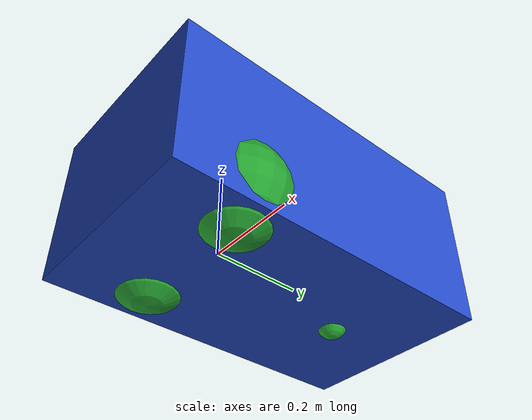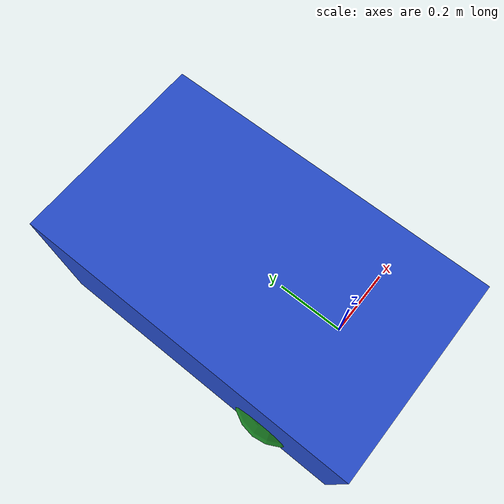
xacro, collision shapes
<?xml version="1.0"?>
<robot xmlns:xacro="http://www.ros.org/wiki/xacro">

  <!--       PROPERTIES          -->

  <xacro:property name="wheel_radius" value="0.119289"/>
  <xacro:property name="wheel_width" value="0.160767"/>
  <xacro:property name="base_width" value="0.478531"/>
  <xacro:property name="base_length" value="0.849993"/>
  <xacro:property name="base_height" value="0.253914"/>

  <xacro:property name="roda_radius" value="0.038463"/>

  <xacro:property name="base_x" value="0.102772"/>
  <xacro:property name="base_y" value="-0.213746"/>
  <xacro:property name="base_z" value="-0.353914"/>

  <xacro:property name="left_wheel_x" value="0.342038"/>
  <xacro:property name="right_wheel_x" value="-0.136493"/>
  <xacro:property name="wheel_z" value="-0.119289"/>

  <xacro:property name="roda_x" value="0.102772"/>
  <xacro:property name="roda_y" value="-0.422475"/>
  <xacro:property name="roda_z" value="-0.045338"/>

  <!-- Masses -->
  <xacro:property name="base_mass" value="2.5"/>
  <xacro:property name="wheel_mass" value="0.35"/>
  <xacro:property name="roda_mass" value="0.2"/>

  <!--        ROOT FRAME         -->

  <link name="base_footprint"/>

  <!--     MOBILE BASE LINK      -->

  <link name="mobile_uvc_base_link">
    <visual>
      <geometry>
        <mesh filename="file:///home/linos/cad_projects/mobile/body.stl" scale="0.001 0.001 0.001"/>
      </geometry>
      <origin xyz="${base_x} ${base_y} ${base_z}" rpy="0 0 0"/>
      <material name="blue"/>
    </visual>

    <collision>
      <geometry>
        <box size="0.500 0.849993 0.4"/>
      </geometry>
      <origin xyz="0 0 ${-0.253914/2}" rpy="0 0 0"/>
    </collision>

    <!-- INERTIA (BOX) -->
    <xacro:box_inertia
        m="${base_mass}"
        x="0.500"
        y="0.849993"
        z="0.4"
        o_xyz="0 0 ${-0.253914/2}"
        o_rpy="0 0 0"/>
  </link>

  <!--       LEFT WHEEL          -->

  <link name="left_wheel_link">
    <visual>
      <geometry>
        <mesh filename="file:///home/linos/cad_projects/mobile/left_wheel.stl" scale="0.001 0.001 0.001"/>
      </geometry>
      <origin xyz="${left_wheel_x} 0 ${wheel_z}" rpy="0 0 0"/>
      <material name="green"/>
    </visual>

    <collision>
      <geometry>
        <sphere radius="${wheel_radius}"/>
      </geometry>
      <origin xyz="${wheel_width/2} 0 0" rpy="0 0 0"/>
    </collision>

    <!-- INERTIA (SPHERE) -->
    <xacro:sphere_inertia
        m="${wheel_mass}"
        r="${wheel_radius}"
        o_xyz="${wheel_width/2} 0 0"
        o_rpy="0 0 0"/>
  </link>

  <!--       RIGHT WHEEL         -->

  <link name="right_wheel_link">
    <visual>
      <geometry>
        <mesh filename="file:///home/linos/cad_projects/mobile/right_wheel.stl" scale="0.001 0.001 0.001"/>
      </geometry>
      <origin xyz="${right_wheel_x} 0 ${wheel_z}" rpy="0 0 0"/>
      <material name="green"/>
    </visual>

    <collision>
      <geometry>
        <sphere radius="${wheel_radius}"/>
      </geometry>
      <origin xyz="${-wheel_width/2} 0 0" rpy="0 0 0"/>
    </collision>

    <!-- INERTIA (SPHERE) -->
    <xacro:sphere_inertia
        m="${wheel_mass}"
        r="${wheel_radius}"
        o_xyz="${-wheel_width/2} 0 0"
        o_rpy="0 0 0"/>
  </link>

  <!--           RODA            -->

  <link name="roda_link">
    <visual>
      <geometry>
        <mesh filename="file:///home/linos/cad_projects/mobile/roda.stl" scale="0.001 0.001 0.001"/>
      </geometry>
      <origin xyz="${roda_x} ${roda_y} ${roda_z}" rpy="0 0 0"/>
      <material name="green"/>
    </visual>

    <collision>
      <geometry>
        <sphere radius="${roda_radius}"/>
      </geometry>
    </collision>

    <!-- INERTIA (SPHERE) -->
    <xacro:sphere_inertia
        m="${roda_mass}"
        r="${roda_radius}"
        o_xyz="0 0 0"
        o_rpy="0 0 0"/>
  </link>

  <!--           JOINTS          -->

  <joint name="base_to_base_footprint_joint" type="fixed">
    <parent link="base_footprint"/>
    <child link="mobile_uvc_base_link"/>
    <origin xyz="${-base_x} ${-base_y} ${-base_z}" rpy="0 0 0"/>
  </joint>

  <joint name="left_wheel_joint" type="continuous">
    <parent link="mobile_uvc_base_link"/>
    <child link="left_wheel_link"/>
    <origin xyz="${base_x - left_wheel_x} ${base_y} ${base_z - wheel_z}" rpy="0 0 0"/>
    <axis xyz="1 0 0"/>
  </joint>

  <joint name="right_wheel_joint" type="continuous">
    <parent link="mobile_uvc_base_link"/>
    <child link="right_wheel_link"/>
    <origin xyz="${base_x - right_wheel_x} ${base_y} ${base_z - wheel_z}" rpy="0 0 0"/>
    <axis xyz="1 0 0"/>
  </joint>

  <joint name="roda_joint" type="continuous">
    <parent link="mobile_uvc_base_link"/>
    <child link="roda_link"/>
    <origin xyz="${base_x - roda_x} ${base_y - roda_y} ${base_z - roda_z}" rpy="0 0 0"/>
    <axis xyz="0 1 0"/>
  </joint>

</robot>
